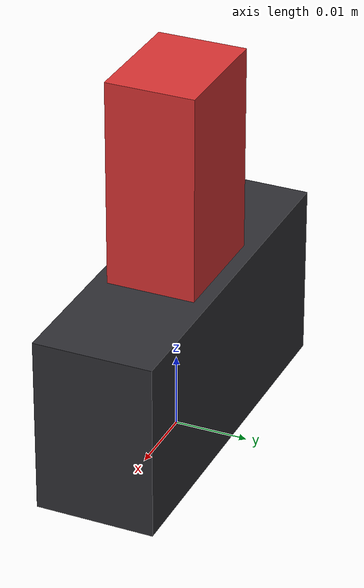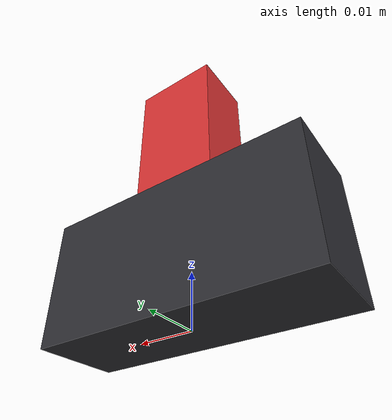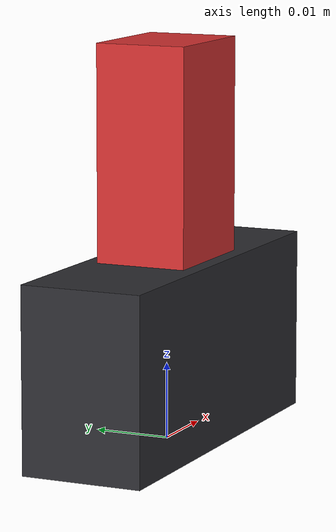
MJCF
<mujoco model="red_switch">
  <asset>
    <material name="red_switch_material" rgba="0.85 0.20 0.20 1"/>
    <material name="switch_base_material" rgba="0.18 0.18 0.20 1"/>
  </asset>

  <worldbody>
    <body name="red_switch">
      <geom
        name="red_switch_base"
        type="box"
        pos="0 0 0.012"
        size="0.025 0.008 0.012"
        material="switch_base_material"
      />
      <geom
        name="red_switch_toggle"
        type="box"
        pos="0 0 0.032"
        size="0.008 0.006 0.020"
        material="red_switch_material"
      />
    </body>
  </worldbody>
</mujoco>
